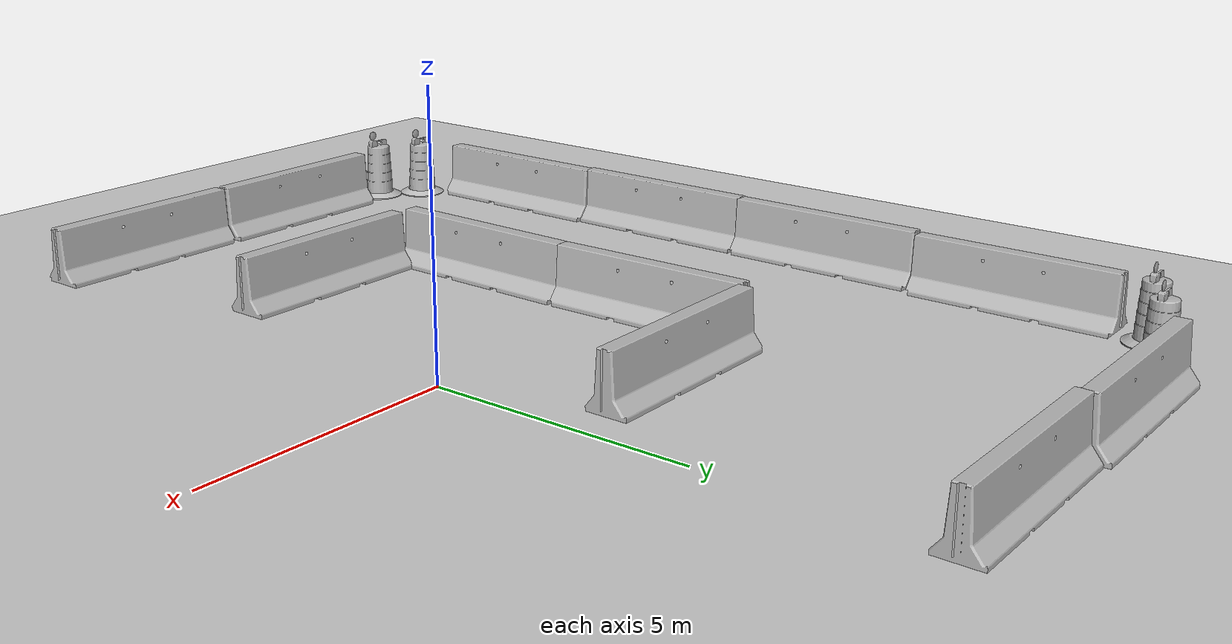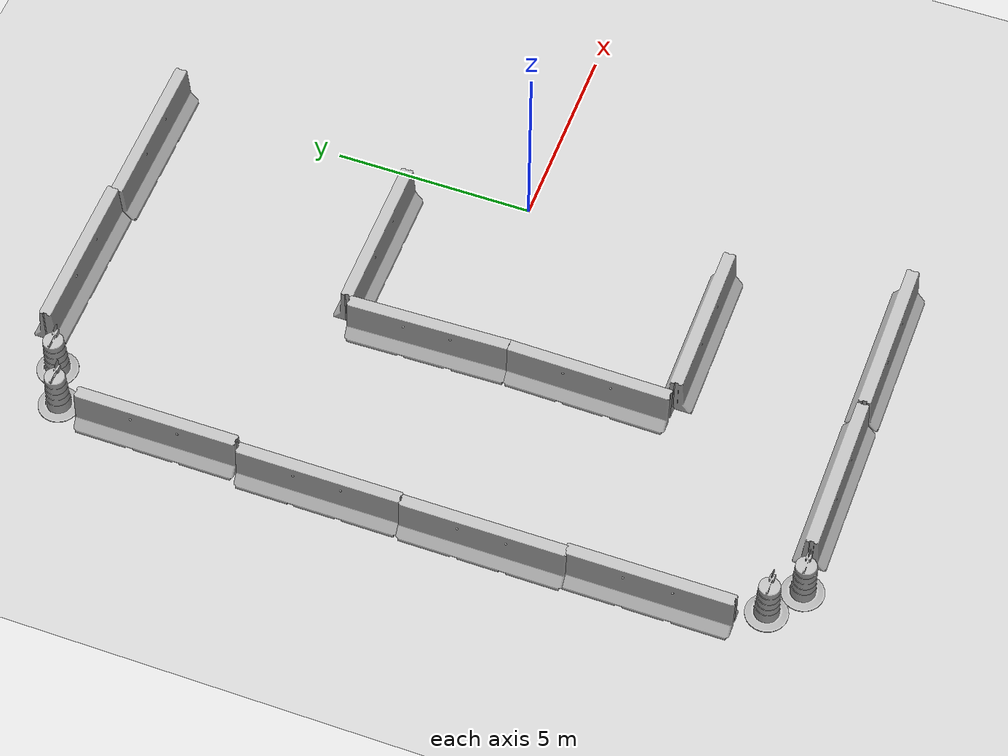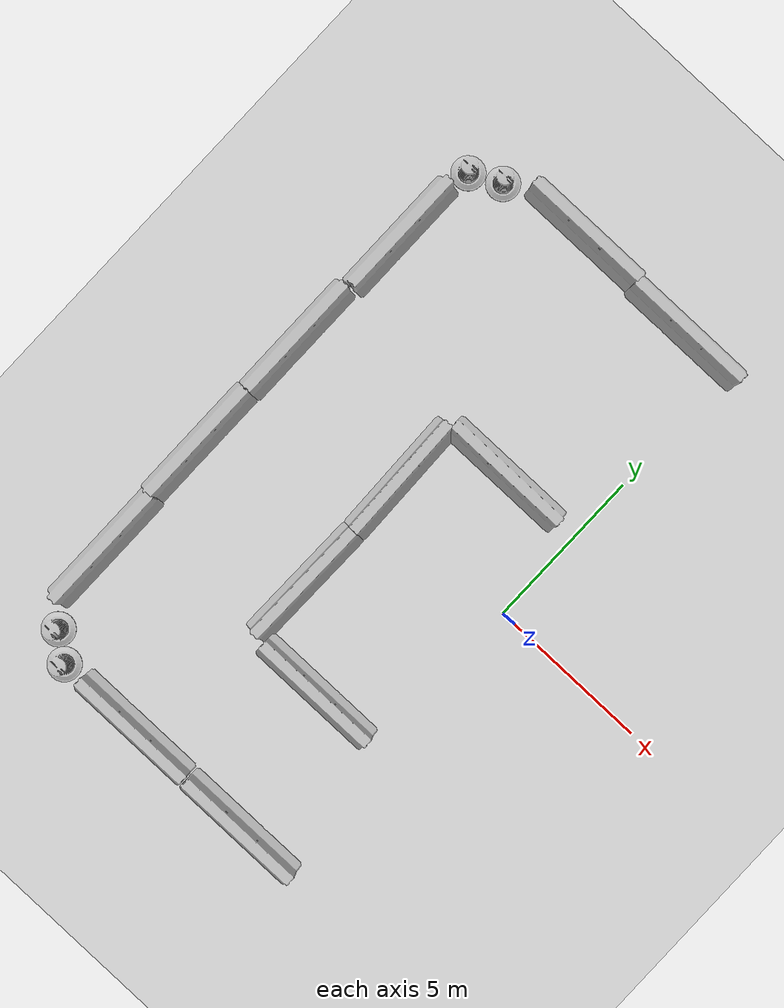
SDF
<sdf version="1.6">
 <world name="default">
  <model name="ground_plane">
   <static>1</static>
   <link name="link">
    <collision name="collision">
     <geometry><plane><normal>0 0 1</normal><size>100 100</size></plane></geometry>
     <surface><friction><ode><mu>100</mu><mu2>50</mu2></ode></friction></surface>
    </collision>
    <visual name="visual">
     <cast_shadows>0</cast_shadows>
     <geometry><plane><normal>0 0 1</normal><size>100 100</size></plane></geometry>
     <material>
      <script><uri>file://media/materials/scripts/gazebo.material</uri><name>Gazebo/Grey</name></script>
     </material>
    </visual>
   </link>
  </model>
  <model name="jersey_barrier">
   <static>1</static>
   <link name="link">
    <visual name="visual">
     <geometry>
      <mesh><uri>model://jersey_barrier/meshes/jersey_barrier.dae</uri><scale>1 1 1</scale></mesh>
     </geometry>
    </visual>
    <collision name="upright">
     <pose>0 0 0.5715 0 -0 0</pose>
     <geometry><box><size>4.06542 0.3063 1.143</size></box></geometry>
    </collision>
    <collision name="base">
     <pose>0 0 0.032258 0 -0 0</pose>
     <geometry><box><size>4.06542 0.8107 0.064516</size></box></geometry>
    </collision>
    <collision name="base2">
     <pose>0 0 0.1 0 -0 0</pose>
     <geometry><box><size>4.06542 0.65 0.1</size></box></geometry>
    </collision>
    <collision name="base3">
     <pose>0 0 0.2 0 -0 0</pose>
     <geometry><box><size>4.06542 0.5 0.1</size></box></geometry>
    </collision>
    <collision name="left-angle">
     <pose>0 -0.224 0.2401 0.9 -0 0</pose>
     <geometry><box><size>4.06542 0.5 0.064516</size></box></geometry>
    </collision>
    <collision name="right-angle">
     <pose>0 0.224 0.2401 -0.9 0 0</pose>
     <geometry><box><size>4.06542 0.5 0.064516</size></box></geometry>
    </collision>
   </link>
   <pose>-5.65677 9.4608 0 0 -0 0</pose>
  </model>
  <model name="jersey_barrier_clone">
   <static>1</static>
   <link name="link">
    <visual name="visual">
     <geometry>
      <mesh><uri>model://jersey_barrier/meshes/jersey_barrier.dae</uri><scale>1 1 1</scale></mesh>
     </geometry>
    </visual>
    <collision name="upright">
     <pose>0 0 0.5715 0 -0 0</pose>
     <geometry><box><size>4.06542 0.3063 1.143</size></box></geometry>
    </collision>
    <collision name="base">
     <pose>0 0 0.032258 0 -0 0</pose>
     <geometry><box><size>4.06542 0.8107 0.064516</size></box></geometry>
    </collision>
    <collision name="base2">
     <pose>0 0 0.1 0 -0 0</pose>
     <geometry><box><size>4.06542 0.65 0.1</size></box></geometry>
    </collision>
    <collision name="base3">
     <pose>0 0 0.2 0 -0 0</pose>
     <geometry><box><size>4.06542 0.5 0.1</size></box></geometry>
    </collision>
    <collision name="left-angle">
     <pose>0 -0.224 0.2401 0.9 -0 0</pose>
     <geometry><box><size>4.06542 0.5 0.064516</size></box></geometry>
    </collision>
    <collision name="right-angle">
     <pose>0 0.224 0.2401 -0.9 0 0</pose>
     <geometry><box><size>4.06542 0.5 0.064516</size></box></geometry>
    </collision>
   </link>
   <pose>-1.65987 9.36075 0 0 -0 0</pose>
  </model>
  <model name="jersey_barrier_clone_2_clone_1">
   <static>1</static>
   <link name="link">
    <visual name="visual">
     <geometry>
      <mesh><uri>model://jersey_barrier/meshes/jersey_barrier.dae</uri><scale>1 1 1</scale></mesh>
     </geometry>
    </visual>
    <collision name="upright">
     <pose>0 0 0.5715 0 -0 0</pose>
     <geometry><box><size>4.06542 0.3063 1.143</size></box></geometry>
    </collision>
    <collision name="base">
     <pose>0 0 0.032258 0 -0 0</pose>
     <geometry><box><size>4.06542 0.8107 0.064516</size></box></geometry>
    </collision>
    <collision name="base2">
     <pose>0 0 0.1 0 -0 0</pose>
     <geometry><box><size>4.06542 0.65 0.1</size></box></geometry>
    </collision>
    <collision name="base3">
     <pose>0 0 0.2 0 -0 0</pose>
     <geometry><box><size>4.06542 0.5 0.1</size></box></geometry>
    </collision>
    <collision name="left-angle">
     <pose>0 -0.224 0.2401 0.9 -0 0</pose>
     <geometry><box><size>4.06542 0.5 0.064516</size></box></geometry>
    </collision>
    <collision name="right-angle">
     <pose>0 0.224 0.2401 -0.9 0 0</pose>
     <geometry><box><size>4.06542 0.5 0.064516</size></box></geometry>
    </collision>
   </link>
   <pose>-1.33414 -9.50852 0 0 -0 0</pose>
  </model>
  <model name="jersey_barrier_clone_2_clone_2">
   <static>1</static>
   <link name="link">
    <visual name="visual">
     <geometry>
      <mesh><uri>model://jersey_barrier/meshes/jersey_barrier.dae</uri><scale>1 1 1</scale></mesh>
     </geometry>
    </visual>
    <collision name="upright">
     <pose>0 0 0.5715 0 -0 0</pose>
     <geometry><box><size>4.06542 0.3063 1.143</size></box></geometry>
    </collision>
    <collision name="base">
     <pose>0 0 0.032258 0 -0 0</pose>
     <geometry><box><size>4.06542 0.8107 0.064516</size></box></geometry>
    </collision>
    <collision name="base2">
     <pose>0 0 0.1 0 -0 0</pose>
     <geometry><box><size>4.06542 0.65 0.1</size></box></geometry>
    </collision>
    <collision name="base3">
     <pose>0 0 0.2 0 -0 0</pose>
     <geometry><box><size>4.06542 0.5 0.1</size></box></geometry>
    </collision>
    <collision name="left-angle">
     <pose>0 -0.224 0.2401 0.9 -0 0</pose>
     <geometry><box><size>4.06542 0.5 0.064516</size></box></geometry>
    </collision>
    <collision name="right-angle">
     <pose>0 0.224 0.2401 -0.9 0 0</pose>
     <geometry><box><size>4.06542 0.5 0.064516</size></box></geometry>
    </collision>
   </link>
   <pose>-5.44605 -9.49634 0 0 -0 0</pose>
  </model>
  <model name="jersey_barrier_clone_3_clone_1_clone">
   <static>1</static>
   <link name="link">
    <visual name="visual">
     <geometry>
      <mesh><uri>model://jersey_barrier/meshes/jersey_barrier.dae</uri><scale>1 1 1</scale></mesh>
     </geometry>
    </visual>
    <collision name="upright">
     <pose>0 0 0.5715 0 -0 0</pose>
     <geometry><box><size>4.06542 0.3063 1.143</size></box></geometry>
    </collision>
    <collision name="base">
     <pose>0 0 0.032258 0 -0 0</pose>
     <geometry><box><size>4.06542 0.8107 0.064516</size></box></geometry>
    </collision>
    <collision name="base2">
     <pose>0 0 0.1 0 -0 0</pose>
     <geometry><box><size>4.06542 0.65 0.1</size></box></geometry>
    </collision>
    <collision name="base3">
     <pose>0 0 0.2 0 -0 0</pose>
     <geometry><box><size>4.06542 0.5 0.1</size></box></geometry>
    </collision>
    <collision name="left-angle">
     <pose>0 -0.224 0.2401 0.9 -0 0</pose>
     <geometry><box><size>4.06542 0.5 0.064516</size></box></geometry>
    </collision>
    <collision name="right-angle">
     <pose>0 0.224 0.2401 -0.9 0 0</pose>
     <geometry><box><size>4.06542 0.5 0.064516</size></box></geometry>
    </collision>
   </link>
   <pose>-9.54289 -6.33149 0 0 0 -1.56865</pose>
  </model>
  <model name="jersey_barrier_clone_3_clone_1_clone_0">
   <static>1</static>
   <link name="link">
    <visual name="visual">
     <geometry>
      <mesh><uri>model://jersey_barrier/meshes/jersey_barrier.dae</uri><scale>1 1 1</scale></mesh>
     </geometry>
    </visual>
    <collision name="upright">
     <pose>0 0 0.5715 0 -0 0</pose>
     <geometry><box><size>4.06542 0.3063 1.143</size></box></geometry>
    </collision>
    <collision name="base">
     <pose>0 0 0.032258 0 -0 0</pose>
     <geometry><box><size>4.06542 0.8107 0.064516</size></box></geometry>
    </collision>
    <collision name="base2">
     <pose>0 0 0.1 0 -0 0</pose>
     <geometry><box><size>4.06542 0.65 0.1</size></box></geometry>
    </collision>
    <collision name="base3">
     <pose>0 0 0.2 0 -0 0</pose>
     <geometry><box><size>4.06542 0.5 0.1</size></box></geometry>
    </collision>
    <collision name="left-angle">
     <pose>0 -0.224 0.2401 0.9 -0 0</pose>
     <geometry><box><size>4.06542 0.5 0.064516</size></box></geometry>
    </collision>
    <collision name="right-angle">
     <pose>0 0.224 0.2401 -0.9 0 0</pose>
     <geometry><box><size>4.06542 0.5 0.064516</size></box></geometry>
    </collision>
   </link>
   <pose>-9.6221 -2.35336 0 0 0 -1.56865</pose>
  </model>
  <model name="jersey_barrier_clone_3_clone_1_clone_1">
   <static>1</static>
   <link name="link">
    <visual name="visual">
     <geometry>
      <mesh><uri>model://jersey_barrier/meshes/jersey_barrier.dae</uri><scale>1 1 1</scale></mesh>
     </geometry>
    </visual>
    <collision name="upright">
     <pose>0 0 0.5715 0 -0 0</pose>
     <geometry><box><size>4.06542 0.3063 1.143</size></box></geometry>
    </collision>
    <collision name="base">
     <pose>0 0 0.032258 0 -0 0</pose>
     <geometry><box><size>4.06542 0.8107 0.064516</size></box></geometry>
    </collision>
    <collision name="base2">
     <pose>0 0 0.1 0 -0 0</pose>
     <geometry><box><size>4.06542 0.65 0.1</size></box></geometry>
    </collision>
    <collision name="base3">
     <pose>0 0 0.2 0 -0 0</pose>
     <geometry><box><size>4.06542 0.5 0.1</size></box></geometry>
    </collision>
    <collision name="left-angle">
     <pose>0 -0.224 0.2401 0.9 -0 0</pose>
     <geometry><box><size>4.06542 0.5 0.064516</size></box></geometry>
    </collision>
    <collision name="right-angle">
     <pose>0 0.224 0.2401 -0.9 0 0</pose>
     <geometry><box><size>4.06542 0.5 0.064516</size></box></geometry>
    </collision>
   </link>
   <pose>-9.58952 1.69745 0 0 0 -1.56865</pose>
  </model>
  <model name="jersey_barrier_clone_3_clone_1_clone_2">
   <static>1</static>
   <link name="link">
    <visual name="visual">
     <geometry>
      <mesh><uri>model://jersey_barrier/meshes/jersey_barrier.dae</uri><scale>1 1 1</scale></mesh>
     </geometry>
    </visual>
    <collision name="upright">
     <pose>0 0 0.5715 0 -0 0</pose>
     <geometry><box><size>4.06542 0.3063 1.143</size></box></geometry>
    </collision>
    <collision name="base">
     <pose>0 0 0.032258 0 -0 0</pose>
     <geometry><box><size>4.06542 0.8107 0.064516</size></box></geometry>
    </collision>
    <collision name="base2">
     <pose>0 0 0.1 0 -0 0</pose>
     <geometry><box><size>4.06542 0.65 0.1</size></box></geometry>
    </collision>
    <collision name="base3">
     <pose>0 0 0.2 0 -0 0</pose>
     <geometry><box><size>4.06542 0.5 0.1</size></box></geometry>
    </collision>
    <collision name="left-angle">
     <pose>0 -0.224 0.2401 0.9 -0 0</pose>
     <geometry><box><size>4.06542 0.5 0.064516</size></box></geometry>
    </collision>
    <collision name="right-angle">
     <pose>0 0.224 0.2401 -0.9 0 0</pose>
     <geometry><box><size>4.06542 0.5 0.064516</size></box></geometry>
    </collision>
   </link>
   <pose>-9.44715 5.83721 0 0 0 -1.56865</pose>
  </model>
  <model name="Construction Barrel_1">
   <link name="link">
    <inertial>
     <pose>0 0 0.4 0 -0 0</pose>
     <mass>500</mass>
     <inertia><ixx>51.2096</ixx><iyy>51.2096</iyy><izz>25</izz><ixy>0</ixy><ixz>0</ixz><iyz>0</iyz></inertia>
    </inertial>
    <collision name="collision">
     <geometry>
      <mesh><uri>model://construction_barrel/meshes/construction_barrel.dae</uri><scale>1 1 1</scale></mesh>
     </geometry>
    </collision>
    <visual name="visual">
     <geometry>
      <mesh><uri>model://construction_barrel/meshes/construction_barrel.dae</uri><scale>1 1 1</scale></mesh>
     </geometry>
    </visual>
   </link>
   <pose>-9.27269 8.48387 1e-06 3e-06 2e-06 -5.1e-05</pose>
  </model>
  <model name="Construction Barrel_2">
   <link name="link">
    <inertial>
     <pose>0 0 0.4 0 -0 0</pose>
     <mass>500</mass>
     <inertia><ixx>51.2096</ixx><iyy>51.2096</iyy><izz>25</izz><ixy>0</ixy><ixz>0</ixz><iyz>0</iyz></inertia>
    </inertial>
    <collision name="collision">
     <geometry>
      <mesh><uri>model://construction_barrel/meshes/construction_barrel.dae</uri><scale>1 1 1</scale></mesh>
     </geometry>
    </collision>
    <visual name="visual">
     <geometry>
      <mesh><uri>model://construction_barrel/meshes/construction_barrel.dae</uri><scale>1 1 1</scale></mesh>
     </geometry>
    </visual>
   </link>
   <pose>-8.34366 8.9385 -1e-06 4e-06 -2e-06 -4.8e-05</pose>
  </model>
  <model name="Construction Barrel_4">
   <link name="link">
    <inertial>
     <pose>0 0 0.4 0 -0 0</pose>
     <mass>500</mass>
     <inertia><ixx>51.2096</ixx><iyy>51.2096</iyy><izz>25</izz><ixy>0</ixy><ixz>0</ixz><iyz>0</iyz></inertia>
    </inertial>
    <collision name="collision">
     <geometry>
      <mesh><uri>model://construction_barrel/meshes/construction_barrel.dae</uri><scale>1 1 1</scale></mesh>
     </geometry>
    </collision>
    <visual name="visual">
     <geometry>
      <mesh><uri>model://construction_barrel/meshes/construction_barrel.dae</uri><scale>1 1 1</scale></mesh>
     </geometry>
    </visual>
   </link>
   <pose>-8.13321 -9.57177 -1e-06 4e-06 -2e-06 -0.000509</pose>
  </model>
  <model name="Construction Barrel_5">
   <link name="link">
    <inertial>
     <pose>0 0 0.4 0 -0 0</pose>
     <mass>500</mass>
     <inertia><ixx>51.2096</ixx><iyy>51.2096</iyy><izz>25</izz><ixy>0</ixy><ixz>0</ixz><iyz>0</iyz></inertia>
    </inertial>
    <collision name="collision">
     <geometry>
      <mesh><uri>model://construction_barrel/meshes/construction_barrel.dae</uri><scale>1 1 1</scale></mesh>
     </geometry>
    </collision>
    <visual name="visual">
     <geometry>
      <mesh><uri>model://construction_barrel/meshes/construction_barrel.dae</uri><scale>1 1 1</scale></mesh>
     </geometry>
    </visual>
   </link>
   <pose>-8.93855 -8.96011 -1e-06 0 5e-06 -0.000405</pose>
  </model>
  <model name="jersey_barrier_0">
   <static>1</static>
   <link name="link">
    <visual name="visual">
     <geometry>
      <mesh><uri>model://jersey_barrier/meshes/jersey_barrier.dae</uri><scale>1 1 1</scale></mesh>
     </geometry>
    </visual>
    <collision name="upright">
     <pose>0 0 0.5715 0 -0 0</pose>
     <geometry><box><size>4.06542 0.3063 1.143</size></box></geometry>
    </collision>
    <collision name="base">
     <pose>0 0 0.032258 0 -0 0</pose>
     <geometry><box><size>4.06542 0.8107 0.064516</size></box></geometry>
    </collision>
    <collision name="base2">
     <pose>0 0 0.1 0 -0 0</pose>
     <geometry><box><size>4.06542 0.65 0.1</size></box></geometry>
    </collision>
    <collision name="base3">
     <pose>0 0 0.2 0 -0 0</pose>
     <geometry><box><size>4.06542 0.5 0.1</size></box></geometry>
    </collision>
    <collision name="left-angle">
     <pose>0 -0.224 0.2401 0.9 -0 0</pose>
     <geometry><box><size>4.06542 0.5 0.064516</size></box></geometry>
    </collision>
    <collision name="right-angle">
     <pose>0 0.224 0.2401 -0.9 0 0</pose>
     <geometry><box><size>4.06542 0.5 0.064516</size></box></geometry>
    </collision>
   </link>
   <pose>-4.75193 0.827694 0 0 0 -1.54488</pose>
  </model>
  <model name="jersey_barrier_0_clone">
   <static>1</static>
   <link name="link">
    <visual name="visual">
     <geometry>
      <mesh><uri>model://jersey_barrier/meshes/jersey_barrier.dae</uri><scale>1 1 1</scale></mesh>
     </geometry>
    </visual>
    <collision name="upright">
     <pose>0 0 0.5715 0 -0 0</pose>
     <geometry><box><size>4.06542 0.3063 1.143</size></box></geometry>
    </collision>
    <collision name="base">
     <pose>0 0 0.032258 0 -0 0</pose>
     <geometry><box><size>4.06542 0.8107 0.064516</size></box></geometry>
    </collision>
    <collision name="base2">
     <pose>0 0 0.1 0 -0 0</pose>
     <geometry><box><size>4.06542 0.65 0.1</size></box></geometry>
    </collision>
    <collision name="base3">
     <pose>0 0 0.2 0 -0 0</pose>
     <geometry><box><size>4.06542 0.5 0.1</size></box></geometry>
    </collision>
    <collision name="left-angle">
     <pose>0 -0.224 0.2401 0.9 -0 0</pose>
     <geometry><box><size>4.06542 0.5 0.064516</size></box></geometry>
    </collision>
    <collision name="right-angle">
     <pose>0 0.224 0.2401 -0.9 0 0</pose>
     <geometry><box><size>4.06542 0.5 0.064516</size></box></geometry>
    </collision>
   </link>
   <pose>-2.66021 2.94299 0 0 -0 0</pose>
  </model>
  <model name="jersey_barrier_0_clone_1_clone">
   <static>1</static>
   <link name="link">
    <visual name="visual">
     <geometry>
      <mesh><uri>model://jersey_barrier/meshes/jersey_barrier.dae</uri><scale>1 1 1</scale></mesh>
     </geometry>
    </visual>
    <collision name="upright">
     <pose>0 0 0.5715 0 -0 0</pose>
     <geometry><box><size>4.06542 0.3063 1.143</size></box></geometry>
    </collision>
    <collision name="base">
     <pose>0 0 0.032258 0 -0 0</pose>
     <geometry><box><size>4.06542 0.8107 0.064516</size></box></geometry>
    </collision>
    <collision name="base2">
     <pose>0 0 0.1 0 -0 0</pose>
     <geometry><box><size>4.06542 0.65 0.1</size></box></geometry>
    </collision>
    <collision name="base3">
     <pose>0 0 0.2 0 -0 0</pose>
     <geometry><box><size>4.06542 0.5 0.1</size></box></geometry>
    </collision>
    <collision name="left-angle">
     <pose>0 -0.224 0.2401 0.9 -0 0</pose>
     <geometry><box><size>4.06542 0.5 0.064516</size></box></geometry>
    </collision>
    <collision name="right-angle">
     <pose>0 0.224 0.2401 -0.9 0 0</pose>
     <geometry><box><size>4.06542 0.5 0.064516</size></box></geometry>
    </collision>
   </link>
   <pose>-2.36998 -5.23455 0 0 -0 0</pose>
  </model>
  <model name="jersey_barrier_0_clone_1_clone_clone">
   <static>1</static>
   <link name="link">
    <visual name="visual">
     <geometry>
      <mesh><uri>model://jersey_barrier/meshes/jersey_barrier.dae</uri><scale>1 1 1</scale></mesh>
     </geometry>
    </visual>
    <collision name="upright">
     <pose>0 0 0.5715 0 -0 0</pose>
     <geometry><box><size>4.06542 0.3063 1.143</size></box></geometry>
    </collision>
    <collision name="base">
     <pose>0 0 0.032258 0 -0 0</pose>
     <geometry><box><size>4.06542 0.8107 0.064516</size></box></geometry>
    </collision>
    <collision name="base2">
     <pose>0 0 0.1 0 -0 0</pose>
     <geometry><box><size>4.06542 0.65 0.1</size></box></geometry>
    </collision>
    <collision name="base3">
     <pose>0 0 0.2 0 -0 0</pose>
     <geometry><box><size>4.06542 0.5 0.1</size></box></geometry>
    </collision>
    <collision name="left-angle">
     <pose>0 -0.224 0.2401 0.9 -0 0</pose>
     <geometry><box><size>4.06542 0.5 0.064516</size></box></geometry>
    </collision>
    <collision name="right-angle">
     <pose>0 0.224 0.2401 -0.9 0 0</pose>
     <geometry><box><size>4.06542 0.5 0.064516</size></box></geometry>
    </collision>
   </link>
   <pose>-4.72285 -3.18685 0 0 0 -1.58136</pose>
  </model>
 </world>
</sdf>
